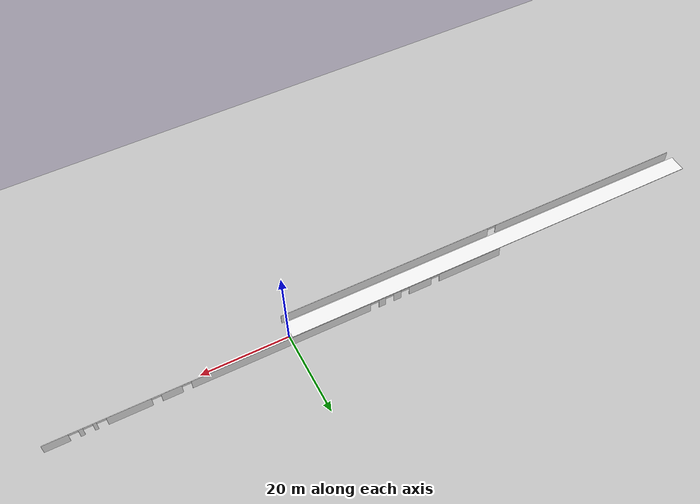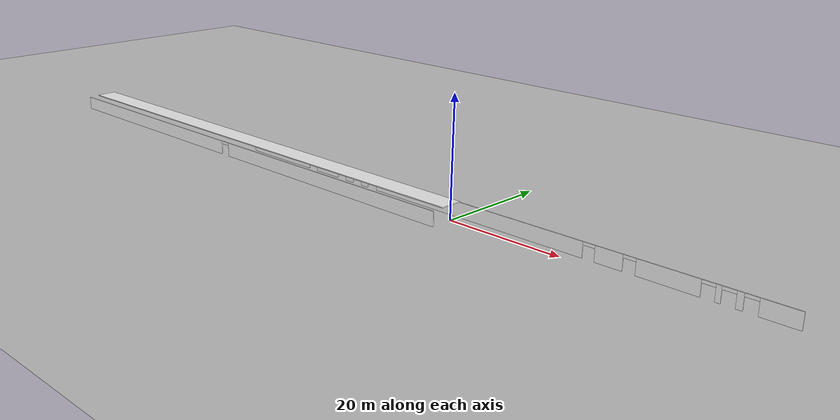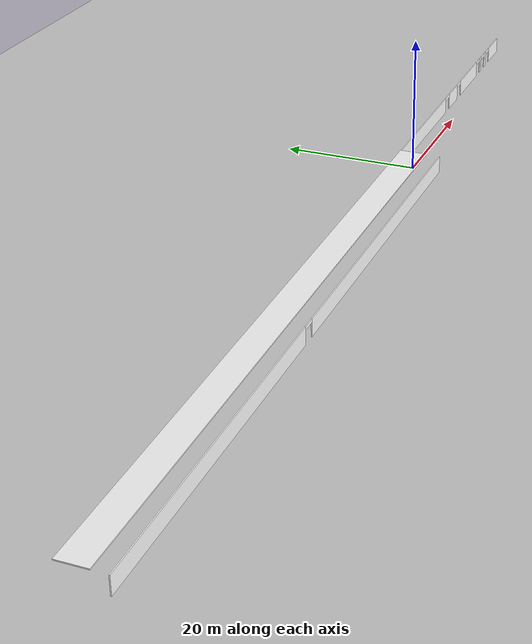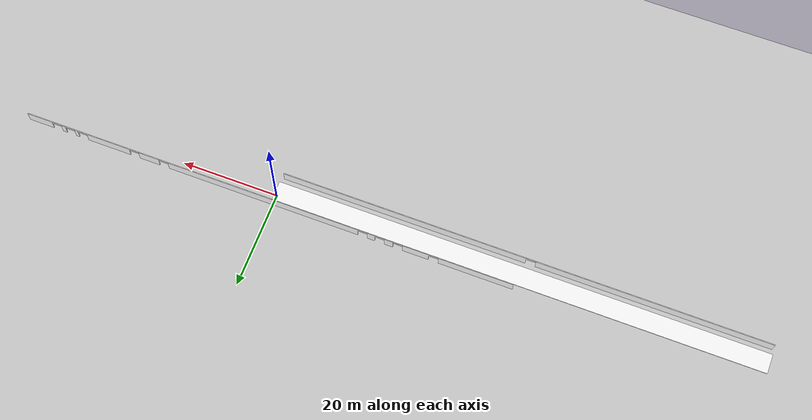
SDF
<sdf version="1.6">
 <world name="default">
  <model name="ground_plane">
   <static>1</static>
   <link name="link">
    <collision name="collision">
     <geometry><plane><normal>0 0 1</normal><size>500 500</size></plane></geometry>
     <surface>
      <contact><collide_bitmask>65535</collide_bitmask></contact>
      <friction><ode><mu>100</mu><mu2>50</mu2></ode></friction>
     </surface>
    </collision>
    <visual name="visual">
     <cast_shadows>0</cast_shadows>
     <geometry><plane><normal>0 0 1</normal><size>100 100</size></plane></geometry>
     <material>
      <script><uri>file://media/materials/scripts/gazebo.material</uri><name>Gazebo/Grey</name></script>
     </material>
    </visual>
   </link>
  </model>
  <model name="wall_with_door">
   <link name="wall_with_door::Wall_2">
    <pose>50 -2 0 0 -0 0</pose>
    <visual name="Wall_2_Visual_0">
     <pose>-26.272 0 1.25 0 -0 0</pose>
     <geometry><box><size>47.456 0.15 2.5</size></box></geometry>
     <material>
      <script>
       <uri>model://floor/materials/scripts</uri>
       <uri>model://floor/materials/textures</uri>
       <name>floor</name>
      </script>
      <ambient>1 1 1 1</ambient>
     </material>
     <meta><layer>0</layer></meta>
    </visual>
    <collision name="Wall_2_Collision_0">
     <geometry><box><size>47.456 0.15 2.5</size></box></geometry>
     <pose>-26.272 0 1.25 0 -0 0</pose>
    </collision>
    <visual name="Wall_2_Visual_1">
     <pose>24.728 0 1.25 0 -0 0</pose>
     <geometry><box><size>50.544 0.15 2.5</size></box></geometry>
     <material>
      <script>
       <uri>model://floor/materials/scripts</uri>
       <uri>model://floor/materials/textures</uri>
       <name>floor</name>
      </script>
      <ambient>1 1 1 1</ambient>
     </material>
     <meta><layer>0</layer></meta>
    </visual>
    <collision name="Wall_2_Collision_1">
     <geometry><box><size>50.544 0.15 2.5</size></box></geometry>
     <pose>24.728 0 1.25 0 -0 0</pose>
    </collision>
    <visual name="Door_2_Visual_0">
     <pose>-1.544 0 2.25 0 -0 0</pose>
     <geometry><box><size>2 0.15 0.5</size></box></geometry>
     <material>
      <script>
       <uri>model://floor/materials/scripts</uri>
       <uri>model://floor/materials/textures</uri>
       <name>floor</name>
      </script>
      <ambient>1 1 1 1</ambient>
     </material>
     <meta><layer>0</layer></meta>
    </visual>
    <collision name="Door_2_Collision_0">
     <geometry><box><size>2 0.15 0.5</size></box></geometry>
     <pose>-1.544 0 2.25 0 -0 0</pose>
    </collision>
   </link>
   <static>1</static>
   <pose>-100 -2 0 0 -0 0</pose>
  </model>
  <model name="wall_with_door_ex1">
   <link name="wall_with_door::Wall_2">
    <pose>0 2 0 0 -0 0</pose>
    <visual name="Wall_2_Visual_0">
     <pose>-42.3645 0 1.25 0 -0 0</pose>
     <geometry><box><size>15.271 0.15 2.5</size></box></geometry>
     <material>
      <script>
       <uri>model://floor/materials/scripts</uri>
       <uri>model://floor/materials/textures</uri>
       <name>floor</name>
      </script>
      <ambient>1 1 1 1</ambient>
     </material>
     <meta><layer>0</layer></meta>
    </visual>
    <collision name="Wall_2_Collision_0">
     <geometry><box><size>15.271 0.15 2.5</size></box></geometry>
     <pose>-42.3645 0 1.25 0 -0 0</pose>
    </collision>
    <visual name="Wall_2_Visual_1">
     <pose>-30.0405 0 1.25 0 -0 0</pose>
     <geometry><box><size>5.377 0.15 2.5</size></box></geometry>
     <material>
      <script>
       <uri>model://floor/materials/scripts</uri>
       <uri>model://floor/materials/textures</uri>
       <name>floor</name>
      </script>
      <ambient>1 1 1 1</ambient>
     </material>
     <meta><layer>0</layer></meta>
    </visual>
    <collision name="Wall_2_Collision_1">
     <geometry><box><size>5.377 0.15 2.5</size></box></geometry>
     <pose>-30.0405 0 1.25 0 -0 0</pose>
    </collision>
    <visual name="Wall_2_Visual_2">
     <pose>-24.472 0 1.25 0 -0 0</pose>
     <geometry><box><size>1.76 0.15 2.5</size></box></geometry>
     <material>
      <script>
       <uri>model://floor/materials/scripts</uri>
       <uri>model://floor/materials/textures</uri>
       <name>floor</name>
      </script>
      <ambient>1 1 1 1</ambient>
     </material>
     <meta><layer>0</layer></meta>
    </visual>
    <collision name="Wall_2_Collision_2">
     <geometry><box><size>1.76 0.15 2.5</size></box></geometry>
     <pose>-24.472 0 1.25 0 -0 0</pose>
    </collision>
    <visual name="Wall_2_Visual_3">
     <pose>-20.8175 0 1.25 0 -0 0</pose>
     <geometry><box><size>1.549 0.15 2.5</size></box></geometry>
     <material>
      <script>
       <uri>model://floor/materials/scripts</uri>
       <uri>model://floor/materials/textures</uri>
       <name>floor</name>
      </script>
      <ambient>1 1 1 1</ambient>
     </material>
     <meta><layer>0</layer></meta>
    </visual>
    <collision name="Wall_2_Collision_3">
     <geometry><box><size>1.549 0.15 2.5</size></box></geometry>
     <pose>-20.8175 0 1.25 0 -0 0</pose>
    </collision>
    <visual name="Wall_2_Visual_4">
     <pose>2.1425 0 1.25 0 -0 0</pose>
     <geometry><box><size>40.371 0.15 2.5</size></box></geometry>
     <material>
      <script>
       <uri>model://floor/materials/scripts</uri>
       <uri>model://floor/materials/textures</uri>
       <name>floor</name>
      </script>
      <ambient>1 1 1 1</ambient>
     </material>
     <meta><layer>0</layer></meta>
    </visual>
    <collision name="Wall_2_Collision_4">
     <geometry><box><size>40.371 0.15 2.5</size></box></geometry>
     <pose>2.1425 0 1.25 0 -0 0</pose>
    </collision>
    <visual name="Wall_2_Visual_5">
     <pose>26.519 0 1.25 0 -0 0</pose>
     <geometry><box><size>4.382 0.15 2.5</size></box></geometry>
     <material>
      <script>
       <uri>model://floor/materials/scripts</uri>
       <uri>model://floor/materials/textures</uri>
       <name>floor</name>
      </script>
      <ambient>1 1 1 1</ambient>
     </material>
     <meta><layer>0</layer></meta>
    </visual>
    <collision name="Wall_2_Collision_5">
     <geometry><box><size>4.382 0.15 2.5</size></box></geometry>
     <pose>26.519 0 1.25 0 -0 0</pose>
    </collision>
    <visual name="Wall_2_Visual_6">
     <pose>35.369 0 1.25 0 -0 0</pose>
     <geometry><box><size>9.318 0.15 2.5</size></box></geometry>
     <material>
      <script>
       <uri>model://floor/materials/scripts</uri>
       <uri>model://floor/materials/textures</uri>
       <name>floor</name>
      </script>
      <ambient>1 1 1 1</ambient>
     </material>
     <meta><layer>0</layer></meta>
    </visual>
    <collision name="Wall_2_Collision_6">
     <geometry><box><size>9.318 0.15 2.5</size></box></geometry>
     <pose>35.369 0 1.25 0 -0 0</pose>
    </collision>
    <visual name="Wall_2_Visual_7">
     <pose>42.4015 0 1.25 0 -0 0</pose>
     <geometry><box><size>0.747 0.15 2.5</size></box></geometry>
     <material>
      <script>
       <uri>model://floor/materials/scripts</uri>
       <uri>model://floor/materials/textures</uri>
       <name>floor</name>
      </script>
      <ambient>1 1 1 1</ambient>
     </material>
     <meta><layer>0</layer></meta>
    </visual>
    <collision name="Wall_2_Collision_7">
     <geometry><box><size>0.747 0.15 2.5</size></box></geometry>
     <pose>42.4015 0 1.25 0 -0 0</pose>
    </collision>
    <visual name="Wall_2_Visual_8">
     <pose>45.239 0 1.25 0 -0 0</pose>
     <geometry><box><size>0.928 0.15 2.5</size></box></geometry>
     <material>
      <script>
       <uri>model://floor/materials/scripts</uri>
       <uri>model://floor/materials/textures</uri>
       <name>floor</name>
      </script>
      <ambient>1 1 1 1</ambient>
     </material>
     <meta><layer>0</layer></meta>
    </visual>
    <collision name="Wall_2_Collision_8">
     <geometry><box><size>0.928 0.15 2.5</size></box></geometry>
     <pose>45.239 0 1.25 0 -0 0</pose>
    </collision>
    <visual name="Wall_2_Visual_9">
     <pose>50.4005 0 1.25 0 -0 0</pose>
     <geometry><box><size>5.395 0.15 2.5</size></box></geometry>
     <material>
      <script>
       <uri>model://floor/materials/scripts</uri>
       <uri>model://floor/materials/textures</uri>
       <name>floor</name>
      </script>
      <ambient>1 1 1 1</ambient>
     </material>
     <meta><layer>0</layer></meta>
    </visual>
    <collision name="Wall_2_Collision_9">
     <geometry><box><size>5.395 0.15 2.5</size></box></geometry>
     <pose>50.4005 0 1.25 0 -0 0</pose>
    </collision>
    <visual name="Door_2_Visual_0">
     <pose>-33.729 0 2.25 0 -0 0</pose>
     <geometry><box><size>2 0.15 0.5</size></box></geometry>
     <material>
      <script>
       <uri>model://floor/materials/scripts</uri>
       <uri>model://floor/materials/textures</uri>
       <name>floor</name>
      </script>
      <ambient>1 1 1 1</ambient>
     </material>
     <meta><layer>0</layer></meta>
    </visual>
    <collision name="Door_2_Collision_0">
     <geometry><box><size>2 0.15 0.5</size></box></geometry>
     <pose>-33.729 0 2.25 0 -0 0</pose>
    </collision>
    <visual name="Door_2_Visual_1">
     <pose>-26.352 0 2.25 0 -0 0</pose>
     <geometry><box><size>2 0.15 0.5</size></box></geometry>
     <material>
      <script>
       <uri>model://floor/materials/scripts</uri>
       <uri>model://floor/materials/textures</uri>
       <name>floor</name>
      </script>
      <ambient>1 1 1 1</ambient>
     </material>
     <meta><layer>0</layer></meta>
    </visual>
    <collision name="Door_2_Collision_1">
     <geometry><box><size>2 0.15 0.5</size></box></geometry>
     <pose>-26.352 0 2.25 0 -0 0</pose>
    </collision>
    <visual name="Door_2_Visual_2">
     <pose>-22.592 0 2.25 0 -0 0</pose>
     <geometry><box><size>2 0.15 0.5</size></box></geometry>
     <material>
      <script>
       <uri>model://floor/materials/scripts</uri>
       <uri>model://floor/materials/textures</uri>
       <name>floor</name>
      </script>
      <ambient>1 1 1 1</ambient>
     </material>
     <meta><layer>0</layer></meta>
    </visual>
    <collision name="Door_2_Collision_2">
     <geometry><box><size>2 0.15 0.5</size></box></geometry>
     <pose>-22.592 0 2.25 0 -0 0</pose>
    </collision>
    <visual name="Door_2_Visual_3">
     <pose>-19.043 0 2.25 0 -0 0</pose>
     <geometry><box><size>2 0.15 0.5</size></box></geometry>
     <material>
      <script>
       <uri>model://floor/materials/scripts</uri>
       <uri>model://floor/materials/textures</uri>
       <name>floor</name>
      </script>
      <ambient>1 1 1 1</ambient>
     </material>
     <meta><layer>0</layer></meta>
    </visual>
    <collision name="Door_2_Collision_3">
     <geometry><box><size>2 0.15 0.5</size></box></geometry>
     <pose>-19.043 0 2.25 0 -0 0</pose>
    </collision>
    <visual name="Door_2_Visual_4">
     <pose>23.328 0 2.25 0 -0 0</pose>
     <geometry><box><size>2 0.15 0.5</size></box></geometry>
     <material>
      <script>
       <uri>model://floor/materials/scripts</uri>
       <uri>model://floor/materials/textures</uri>
       <name>floor</name>
      </script>
      <ambient>1 1 1 1</ambient>
     </material>
     <meta><layer>0</layer></meta>
    </visual>
    <collision name="Door_2_Collision_4">
     <geometry><box><size>2 0.15 0.5</size></box></geometry>
     <pose>23.328 0 2.25 0 -0 0</pose>
    </collision>
    <visual name="Door_2_Visual_5">
     <pose>29.71 0 2.25 0 -0 0</pose>
     <geometry><box><size>2 0.15 0.5</size></box></geometry>
     <material>
      <script>
       <uri>model://floor/materials/scripts</uri>
       <uri>model://floor/materials/textures</uri>
       <name>floor</name>
      </script>
      <ambient>1 1 1 1</ambient>
     </material>
     <meta><layer>0</layer></meta>
    </visual>
    <collision name="Door_2_Collision_5">
     <geometry><box><size>2 0.15 0.5</size></box></geometry>
     <pose>29.71 0 2.25 0 -0 0</pose>
    </collision>
    <visual name="Door_2_Visual_6">
     <pose>41.028 0 2.25 0 -0 0</pose>
     <geometry><box><size>2 0.15 0.5</size></box></geometry>
     <material>
      <script>
       <uri>model://floor/materials/scripts</uri>
       <uri>model://floor/materials/textures</uri>
       <name>floor</name>
      </script>
      <ambient>1 1 1 1</ambient>
     </material>
     <meta><layer>0</layer></meta>
    </visual>
    <collision name="Door_2_Collision_6">
     <geometry><box><size>2 0.15 0.5</size></box></geometry>
     <pose>41.028 0 2.25 0 -0 0</pose>
    </collision>
    <visual name="Door_2_Visual_7">
     <pose>43.775 0 2.25 0 -0 0</pose>
     <geometry><box><size>2 0.15 0.5</size></box></geometry>
     <material>
      <script>
       <uri>model://floor/materials/scripts</uri>
       <uri>model://floor/materials/textures</uri>
       <name>floor</name>
      </script>
      <ambient>1 1 1 1</ambient>
     </material>
     <meta><layer>0</layer></meta>
    </visual>
    <collision name="Door_2_Collision_7">
     <geometry><box><size>2 0.15 0.5</size></box></geometry>
     <pose>43.775 0 2.25 0 -0 0</pose>
    </collision>
    <visual name="Door_2_Visual_8">
     <pose>46.703 0 2.25 0 -0 0</pose>
     <geometry><box><size>2 0.15 0.5</size></box></geometry>
     <material>
      <script>
       <uri>model://floor/materials/scripts</uri>
       <uri>model://floor/materials/textures</uri>
       <name>floor</name>
      </script>
      <ambient>1 1 1 1</ambient>
     </material>
     <meta><layer>0</layer></meta>
    </visual>
    <collision name="Door_2_Collision_8">
     <geometry><box><size>2 0.15 0.5</size></box></geometry>
     <pose>46.703 0 2.25 0 -0 0</pose>
    </collision>
   </link>
   <static>1</static>
  </model>
  <model name="brick1">
   <link name="brick1::Wall_0">
    <collision name="Wall_0_Collision">
     <geometry><box><size>100 0.15 4</size></box></geometry>
     <pose>0 0 1.25 0 -0 0</pose>
    </collision>
    <visual name="Wall_0_Visual">
     <pose>0 0 1.25 0 -0 0</pose>
     <geometry><box><size>100 0.15 4</size></box></geometry>
     <material>
      <script>
       <uri>model://floor/materials/scripts</uri>
       <uri>model://floor/materials/textures</uri>
       <name>floor</name>
      </script>
      <ambient>1 1 1 1</ambient>
     </material>
     <meta><layer>0</layer></meta>
    </visual>
    <pose>50 0 0 0 -0 0</pose>
   </link>
   <static>1</static>
   <pose>-100 1.25 2.56 1.57 -0 0</pose>
  </model>
  <model name="wall_with_door">
   <link name="wall_with_door::Wall_2">
    <pose>50 -2 0 0 -0 0</pose>
    <visual name="Wall_2_Visual_0">
     <pose>-26.272 0 1.25 0 -0 0</pose>
     <geometry><box><size>47.456 0.15 2.5</size></box></geometry>
     <material>
      <script>
       <uri>model://floor/materials/scripts</uri>
       <uri>model://floor/materials/textures</uri>
       <name>floor</name>
      </script>
      <ambient>1 1 1 1</ambient>
     </material>
     <meta><layer>0</layer></meta>
    </visual>
    <collision name="Wall_2_Collision_0">
     <geometry><box><size>47.456 0.15 2.5</size></box></geometry>
     <pose>-26.272 0 1.25 0 -0 0</pose>
    </collision>
    <visual name="Wall_2_Visual_1">
     <pose>24.728 0 1.25 0 -0 0</pose>
     <geometry><box><size>50.544 0.15 2.5</size></box></geometry>
     <material>
      <script>
       <uri>model://floor/materials/scripts</uri>
       <uri>model://floor/materials/textures</uri>
       <name>floor</name>
      </script>
      <ambient>1 1 1 1</ambient>
     </material>
     <meta><layer>0</layer></meta>
    </visual>
    <collision name="Wall_2_Collision_1">
     <geometry><box><size>50.544 0.15 2.5</size></box></geometry>
     <pose>24.728 0 1.25 0 -0 0</pose>
    </collision>
    <visual name="Door_2_Visual_0">
     <pose>-1.544 0 2.25 0 -0 0</pose>
     <geometry><box><size>2 0.15 0.5</size></box></geometry>
     <material>
      <script>
       <uri>model://floor/materials/scripts</uri>
       <uri>model://floor/materials/textures</uri>
       <name>floor</name>
      </script>
      <ambient>1 1 1 1</ambient>
     </material>
     <meta><layer>0</layer></meta>
    </visual>
    <collision name="Door_2_Collision_0">
     <geometry><box><size>2 0.15 0.5</size></box></geometry>
     <pose>-1.544 0 2.25 0 -0 0</pose>
    </collision>
   </link>
   <static>1</static>
   <pose>-100 -2 0 0 -0 0</pose>
  </model>
  <model name="brick1">
   <link name="brick1::Wall_0">
    <collision name="Wall_0_Collision">
     <geometry><box><size>100 0.15 4</size></box></geometry>
     <pose>0 0 1.25 0 -0 0</pose>
    </collision>
    <visual name="Wall_0_Visual">
     <pose>0 0 1.25 0 -0 0</pose>
     <geometry><box><size>100 0.15 4</size></box></geometry>
     <material>
      <script>
       <uri>model://floor/materials/scripts</uri>
       <uri>model://floor/materials/textures</uri>
       <name>floor</name>
      </script>
      <ambient>1 1 1 1</ambient>
     </material>
     <meta><layer>0</layer></meta>
    </visual>
    <pose>50 0 0 0 -0 0</pose>
   </link>
   <static>1</static>
   <pose>-100 1.25 2.56 1.57 -0 0</pose>
  </model>
 </world>
</sdf>
